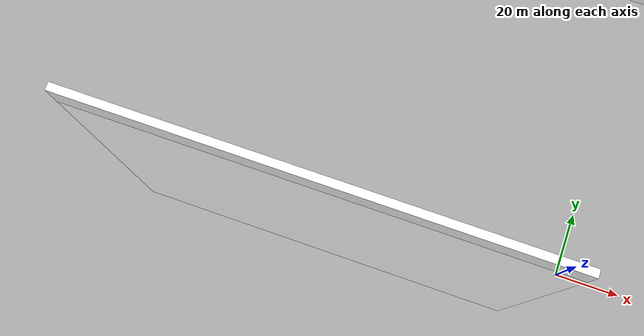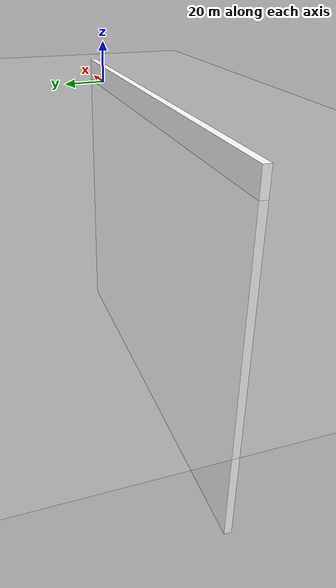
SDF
<?xml version="1.0" ?>
<sdf version="1.4">
  <!-- We use a custom world for the rrbot so that the camera angle is launched correctly -->

  <world name="default">
    <include>
      <uri>model://ground_plane</uri>
    </include>

    <!-- Global light source -->
    <include>
      <uri>model://sun</uri>
    </include>

    <!-- Focus camera on tall pendulum -->
    <gui fullscreen='0'>
      <camera name='user_camera'>
        <pose>4.927360 -4.376610 3.740080 0.000000 0.275643 2.356190</pose>
        <view_controller>orbit</view_controller>
      </camera>
    </gui>
    <gravity>0 0 0</gravity>
    <!-- CUSTOM Ground Plane -->
    <model name="custom_ground_plane_box">
      <pose>0 1.0 0 0 1.570796326794897 1.570796326794897</pose>
      <link name="boomfunk">
        <inertial>
          <pose>0 0 0 0 0 0</pose>
          <mass>100</mass>
          <inertia>
            <ixx>3.33341666667e+3</ixx>
            <ixy>0.0</ixy>
            <ixz>0.0</ixz>
            <iyy>3.33341666667e+3</iyy>
            <iyz>0.0</iyz>
            <izz>6.66666666667e+3</izz>
          </inertia>
        </inertial>
        <collision name="collision">
          <geometry>
            <box>
              <size>0.05 0.5 1.0</size>
            </box>
          </geometry>
          <surface>
              <friction>
                <ode>
                  <mu>0</mu>
                  <mu2>0</mu2>
                </ode>
              </friction>
            </surface>
        </collision>

        <visual name="visual">
          <geometry>
            <mesh><uri>model://checkerboard/checkerboard.dae</uri></mesh>
          </geometry>
        </visual>
      </link>
      <plugin name="object_controller" filename="libgazebo_ros_planar_move.so">
        <commandTopic>cmd_vel</commandTopic>
        <odometryTopic>odom</odometryTopic>
        <odometryFrame>odom</odometryFrame>
        <odometryRate>20.0</odometryRate>
      </plugin>
    </model>

  </world>
</sdf>
